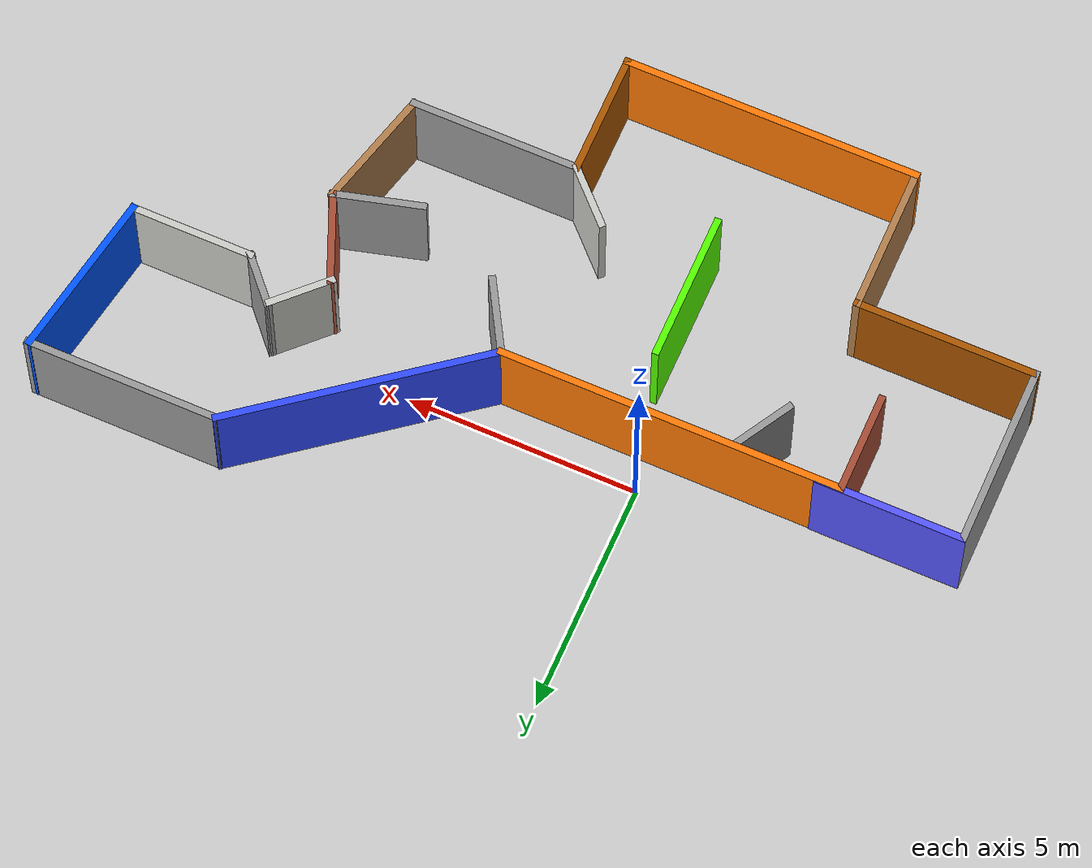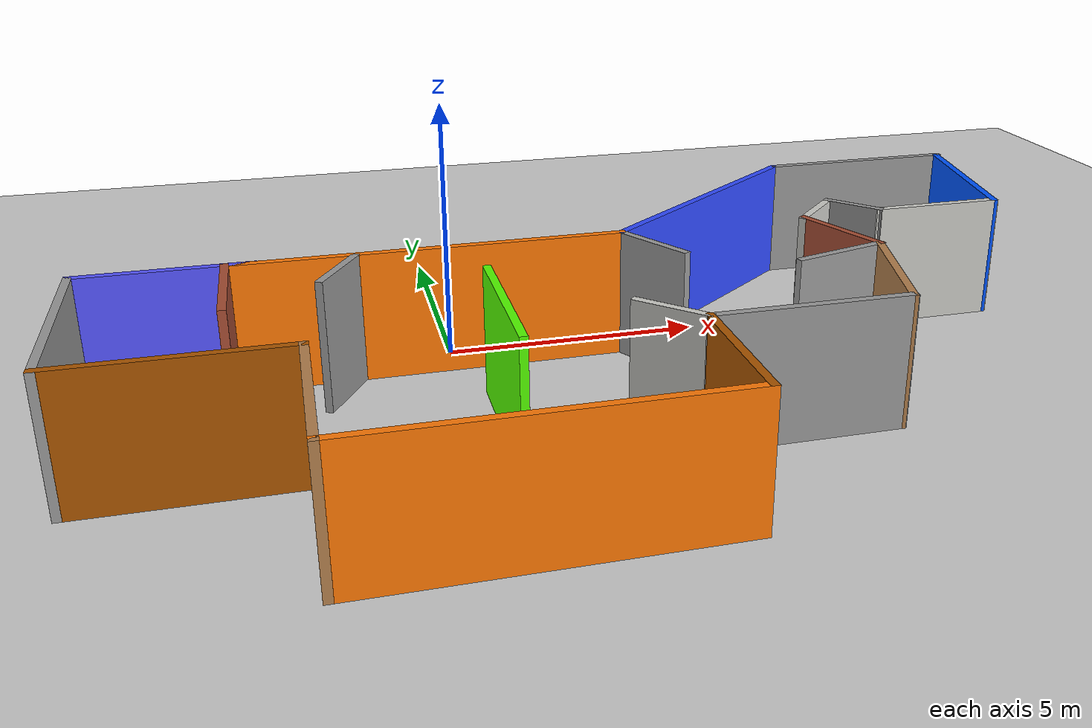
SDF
<sdf version="1.6">
 <world name="default">
  <light name="sun" type="directional">
   <pose>0 0 10 0 -0 0</pose>
   <diffuse>0.8 0.8 0.8 1</diffuse>
   <specular>0.2 0.2 0.2 1</specular>
   <attenuation>
    <range>1000</range>
    <constant>0.9</constant>
    <linear>0.01</linear>
    <quadratic>0.001</quadratic>
   </attenuation>
   <direction>-0.5 0.1 -0.9</direction>
  </light>
  <model name="ground_plane">
   <static>1</static>
   <link name="link">
    <collision name="collision">
     <geometry><plane><normal>0 0 1</normal><size>100 100</size></plane></geometry>
     <surface>
      <contact><collide_bitmask>65535</collide_bitmask></contact>
      <friction><ode><mu>100</mu><mu2>50</mu2></ode></friction>
     </surface>
    </collision>
    <visual name="visual">
     <cast_shadows>0</cast_shadows>
     <geometry><plane><normal>0 0 1</normal><size>100 100</size></plane></geometry>
     <material>
      <script><uri>file://media/materials/scripts/gazebo.material</uri><name>Gazebo/Grey</name></script>
     </material>
    </visual>
   </link>
  </model>
  <gravity>0 0 -9.8</gravity>
  <magnetic_field>6e-06 2.3e-05 -4.2e-05</magnetic_field>
  <atmosphere type="adiabatic"/>
  <physics name="default_physics" default="0" type="ode">
   <max_step_size>0.001</max_step_size>
   <real_time_factor>1</real_time_factor>
   <real_time_update_rate>1000</real_time_update_rate>
  </physics>
  <scene><ambient>0.4 0.4 0.4 1</ambient><background>0.7 0.7 0.7 1</background><shadows>1</shadows></scene>
  <spherical_coordinates>
   <surface_model>EARTH_WGS84</surface_model>
   <latitude_deg>0</latitude_deg>
   <longitude_deg>0</longitude_deg>
   <elevation>0</elevation>
   <heading_deg>0</heading_deg>
  </spherical_coordinates>
  <model name="mynewworld">
   <pose>2.68217 -2.42345 0 0 -0 0</pose>
   <link name="Wall_0">
    <collision name="Wall_0_Collision">
     <geometry><box><size>7.5 0.15 2.5</size></box></geometry>
     <pose>0 0 1.25 0 -0 0</pose>
    </collision>
    <visual name="Wall_0_Visual">
     <pose>0 0 1.25 0 -0 0</pose>
     <geometry><box><size>7.5 0.15 2.5</size></box></geometry>
     <material>
      <script><uri>file://media/materials/scripts/gazebo.material</uri><name>Gazebo/Grey</name></script>
      <ambient>0.996078 0.47451 0.0196078 1</ambient>
     </material>
     <meta><layer>0</layer></meta>
    </visual>
    <pose>-3.06596 1.65944 0 0 -0 0</pose>
   </link>
   <link name="Wall_10">
    <collision name="Wall_10_Collision">
     <geometry><box><size>3.75 0.15 2.5</size></box></geometry>
     <pose>0 0 1.25 0 -0 0</pose>
    </collision>
    <visual name="Wall_10_Visual">
     <pose>0 0 1.25 0 -0 0</pose>
     <geometry><box><size>3.75 0.15 2.5</size></box></geometry>
     <material>
      <script><uri>file://media/materials/scripts/gazebo.material</uri><name>Gazebo/Grey</name></script>
      <ambient>0 0 0 1</ambient>
     </material>
     <meta><layer>0</layer></meta>
    </visual>
    <pose>2.64396 -2.67266 0 0 -0 3.14159</pose>
   </link>
   <link name="Wall_12">
    <collision name="Wall_12_Collision">
     <geometry><box><size>3.25 0.15 2.5</size></box></geometry>
     <pose>0 0 1.25 0 -0 0</pose>
    </collision>
    <visual name="Wall_12_Visual">
     <pose>0 0 1.25 0 -0 0</pose>
     <geometry><box><size>3.25 0.15 2.5</size></box></geometry>
     <material>
      <script><uri>file://media/materials/scripts/gazebo.material</uri><name>Gazebo/Grey</name></script>
      <ambient>0.333333 1 0 1</ambient>
     </material>
     <meta><layer>0</layer></meta>
    </visual>
    <pose>-2.23196 -1.14675 0 0 0 -1.5708</pose>
   </link>
   <link name="Wall_14">
    <collision name="Wall_14_Collision">
     <geometry><box><size>2.75 0.15 2.5</size></box></geometry>
     <pose>0 0 1.25 0 -0 0</pose>
    </collision>
    <visual name="Wall_14_Visual">
     <pose>0 0 1.25 0 -0 0</pose>
     <geometry><box><size>2.75 0.15 2.5</size></box></geometry>
     <material>
      <script><uri>file://media/materials/scripts/gazebo.material</uri><name>Gazebo/Grey</name></script>
      <ambient>0.666667 0.333333 0 1</ambient>
     </material>
     <meta><layer>0</layer></meta>
    </visual>
    <pose>0.843957 -3.97266 0 0 0 -1.5708</pose>
   </link>
   <link name="Wall_15">
    <collision name="Wall_15_Collision">
     <geometry><box><size>6.5 0.15 2.5</size></box></geometry>
     <pose>0 0 1.25 0 -0 0</pose>
    </collision>
    <visual name="Wall_15_Visual">
     <pose>0 0 1.25 0 -0 0</pose>
     <geometry><box><size>6.5 0.15 2.5</size></box></geometry>
     <material>
      <script><uri>file://media/materials/scripts/gazebo.material</uri><name>Gazebo/Grey</name></script>
      <ambient>0.996078 0.47451 0.0196078 1</ambient>
     </material>
     <meta><layer>0</layer></meta>
    </visual>
    <pose>-2.33104 -5.27266 0 0 -0 3.14159</pose>
   </link>
   <link name="Wall_16">
    <collision name="Wall_16_Collision">
     <geometry><box><size>3.25 0.15 2.5</size></box></geometry>
     <pose>0 0 1.25 0 -0 0</pose>
    </collision>
    <visual name="Wall_16_Visual">
     <pose>0 0 1.25 0 -0 0</pose>
     <geometry><box><size>3.25 0.15 2.5</size></box></geometry>
     <material>
      <script><uri>file://media/materials/scripts/gazebo.material</uri><name>Gazebo/Wood</name></script>
      <ambient>1 1 1 1</ambient>
     </material>
     <meta><layer>0</layer></meta>
    </visual>
    <pose>-5.50604 -3.72266 0 0 -0 1.5708</pose>
   </link>
   <link name="Wall_17">
    <collision name="Wall_17_Collision">
     <geometry><box><size>4 0.15 2.5</size></box></geometry>
     <pose>0 0 1.25 0 -0 0</pose>
    </collision>
    <visual name="Wall_17_Visual">
     <pose>0 0 1.25 0 -0 0</pose>
     <geometry><box><size>4 0.15 2.5</size></box></geometry>
     <material>
      <script><uri>file://media/materials/scripts/gazebo.material</uri><name>Gazebo/Grey</name></script>
      <ambient>0.666667 0.333333 0 1</ambient>
     </material>
     <meta><layer>0</layer></meta>
    </visual>
    <pose>-7.43104 -2.17266 0 0 -0 3.14159</pose>
   </link>
   <link name="Wall_18">
    <collision name="Wall_18_Collision">
     <geometry><box><size>4 0.15 2.5</size></box></geometry>
     <pose>0 0 1.25 0 -0 0</pose>
    </collision>
    <visual name="Wall_18_Visual">
     <pose>0 0 1.25 0 -0 0</pose>
     <geometry><box><size>4 0.15 2.5</size></box></geometry>
     <material>
      <script><uri>file://media/materials/scripts/gazebo.material</uri><name>Gazebo/Grey</name></script>
      <ambient>1 1 1 1</ambient>
     </material>
     <meta><layer>0</layer></meta>
    </visual>
    <pose>-9.35604 -0.247664 0 0 -0 1.5708</pose>
   </link>
   <link name="Wall_19">
    <collision name="Wall_19_Collision">
     <geometry><box><size>3.25 0.15 2.5</size></box></geometry>
     <pose>0 0 1.25 0 -0 0</pose>
    </collision>
    <visual name="Wall_19_Visual">
     <pose>0 0 1.25 0 -0 0</pose>
     <geometry><box><size>3.25 0.15 2.5</size></box></geometry>
     <material>
      <script><uri>file://media/materials/scripts/gazebo.material</uri><name>Gazebo/Grey</name></script>
      <ambient>0.333333 0.333333 1 1</ambient>
     </material>
     <meta><layer>0</layer></meta>
    </visual>
    <pose>-7.80604 1.67734 0 0 -0 0</pose>
   </link>
   <link name="Wall_2">
    <collision name="Wall_2_Collision">
     <geometry><box><size>5.99687 0.15 2.5</size></box></geometry>
     <pose>0 0 1.25 0 -0 0</pose>
    </collision>
    <visual name="Wall_2_Visual">
     <pose>0 0 1.25 0 -0 0</pose>
     <geometry><box><size>5.99687 0.15 2.5</size></box></geometry>
     <material>
      <script><uri>file://media/materials/scripts/gazebo.material</uri><name>Gazebo/Grey</name></script>
      <ambient>0.188235 0.294118 1 1</ambient>
     </material>
     <meta><layer>0</layer></meta>
    </visual>
    <pose>2.91924 3.45094 0 0 -0 0.659605</pose>
   </link>
   <link name="Wall_23">
    <collision name="Wall_23_Collision">
     <geometry><box><size>2.25 0.15 2.5</size></box></geometry>
     <pose>0 0 1.25 0 -0 0</pose>
    </collision>
    <visual name="Wall_23_Visual">
     <pose>0 0 1.25 0 -0 0</pose>
     <geometry><box><size>2.25 0.15 2.5</size></box></geometry>
     <material>
      <script><uri>file://media/materials/scripts/gazebo.material</uri><name>Gazebo/Bricks</name></script>
      <ambient>1 1 1 1</ambient>
     </material>
     <meta><layer>0</layer></meta>
    </visual>
    <pose>-6.74096 0.609444 0 0 0 -1.5708</pose>
   </link>
   <link name="Wall_25">
    <collision name="Wall_25_Collision">
     <geometry><box><size>1.5 0.15 2.5</size></box></geometry>
     <pose>0 0 1.25 0 -0 0</pose>
    </collision>
    <visual name="Wall_25_Visual">
     <pose>0 0 1.25 0 -0 0</pose>
     <geometry><box><size>1.5 0.15 2.5</size></box></geometry>
     <material>
      <script><uri>file://media/materials/scripts/gazebo.material</uri><name>Gazebo/Grey</name></script>
      <ambient>1 1 1 1</ambient>
     </material>
     <meta><layer>0</layer></meta>
    </visual>
    <pose>-4.78941 1.03207 0 0 0 -2.0944</pose>
   </link>
   <link name="Wall_27">
    <collision name="Wall_27_Collision">
     <geometry><box><size>1.75 0.15 2.5</size></box></geometry>
     <pose>0 0 1.25 0 -0 0</pose>
    </collision>
    <visual name="Wall_27_Visual">
     <pose>0 0 1.25 0 -0 0</pose>
     <geometry><box><size>1.75 0.15 2.5</size></box></geometry>
     <material>
      <script><uri>file://media/materials/scripts/gazebo.material</uri><name>Gazebo/Grey</name></script>
      <ambient>1 1 1 1</ambient>
     </material>
     <meta><layer>0</layer></meta>
    </visual>
    <pose>1.00904 0.966624 0 0 0 -1.0472</pose>
   </link>
   <link name="Wall_29">
    <collision name="Wall_29_Collision">
     <geometry><box><size>1.5 0.15 2.5</size></box></geometry>
     <pose>0 0 1.25 0 -0 0</pose>
    </collision>
    <visual name="Wall_29_Visual">
     <pose>0 0 1.25 0 -0 0</pose>
     <geometry><box><size>1.5 0.15 2.5</size></box></geometry>
     <material>
      <script><uri>file://media/materials/scripts/gazebo.material</uri><name>Gazebo/CeilingTiled</name></script>
      <ambient>1 1 1 1</ambient>
     </material>
     <meta><layer>0</layer></meta>
    </visual>
    <pose>0.36666 -2.19537 0 0 -0 2.35619</pose>
   </link>
   <link name="Wall_3">
    <collision name="Wall_3_Collision">
     <geometry><box><size>4.25 0.15 2.5</size></box></geometry>
     <pose>0 0 1.25 0 -0 0</pose>
    </collision>
    <visual name="Wall_3_Visual">
     <pose>0 0 1.25 0 -0 0</pose>
     <geometry><box><size>4.25 0.15 2.5</size></box></geometry>
     <material>
      <script><uri>file://media/materials/scripts/gazebo.material</uri><name>Gazebo/Grey</name></script>
      <ambient>0 0 0 1</ambient>
     </material>
     <meta><layer>0</layer></meta>
    </visual>
    <pose>7.30604 5.24244 0 0 -0 0</pose>
   </link>
   <link name="Wall_31">
    <collision name="Wall_31_Collision">
     <geometry><box><size>2 0.15 2.5</size></box></geometry>
     <pose>0 0 1.25 0 -0 0</pose>
    </collision>
    <visual name="Wall_31_Visual">
     <pose>0 0 1.25 0 -0 0</pose>
     <geometry><box><size>2 0.15 2.5</size></box></geometry>
     <material>
      <script><uri>file://media/materials/scripts/gazebo.material</uri><name>Gazebo/Grey</name></script>
      <ambient>1 1 1 1</ambient>
     </material>
     <meta><layer>0</layer></meta>
    </visual>
    <pose>4.2234 -0.400664 0 0 0 -2.87979</pose>
   </link>
   <link name="Wall_4">
    <collision name="Wall_4_Collision">
     <geometry><box><size>3.7153 0.15 2.5</size></box></geometry>
     <pose>0 0 1.25 0 -0 0</pose>
    </collision>
    <visual name="Wall_4_Visual">
     <pose>0 0 1.25 0 -0 0</pose>
     <geometry><box><size>3.7153 0.15 2.5</size></box></geometry>
     <material>
      <script><uri>file://media/materials/scripts/gazebo.material</uri><name>Gazebo/Grey</name></script>
      <ambient>0 0.333333 1 1</ambient>
     </material>
     <meta><layer>0</layer></meta>
    </visual>
    <pose>9.00454 3.48965 0 0 0 -1.75408</pose>
   </link>
   <link name="Wall_5">
    <collision name="Wall_5_Collision">
     <geometry><box><size>2.75 0.15 2.5</size></box></geometry>
     <pose>0 0 1.25 0 -0 0</pose>
    </collision>
    <visual name="Wall_5_Visual">
     <pose>0 0 1.25 0 -0 0</pose>
     <geometry><box><size>2.75 0.15 2.5</size></box></geometry>
     <material>
      <script><uri>file://media/materials/scripts/gazebo.material</uri><name>Gazebo/CeilingTiled</name></script>
      <ambient>1 1 1 1</ambient>
     </material>
     <meta><layer>0</layer></meta>
    </visual>
    <pose>7.37963 1.73686 0 0 -0 3.14159</pose>
   </link>
   <link name="Wall_6">
    <collision name="Wall_6_Collision">
     <geometry><box><size>1.26787 0.15 2.5</size></box></geometry>
     <pose>0 0 1.25 0 -0 0</pose>
    </collision>
    <visual name="Wall_6_Visual">
     <pose>0 0 1.25 0 -0 0</pose>
     <geometry><box><size>1.26787 0.15 2.5</size></box></geometry>
     <material>
      <script><uri>file://media/materials/scripts/gazebo.material</uri><name>Gazebo/Grey</name></script>
      <ambient>1 1 1 1</ambient>
     </material>
     <meta><layer>0</layer></meta>
    </visual>
    <pose>5.70486 2.15153 0 0 -0 2.3057</pose>
   </link>
   <link name="Wall_7">
    <collision name="Wall_7_Collision">
     <geometry><box><size>1.5 0.15 2.5</size></box></geometry>
     <pose>0 0 1.25 0 -0 0</pose>
    </collision>
    <visual name="Wall_7_Visual">
     <pose>0 0 1.25 0 -0 0</pose>
     <geometry><box><size>1.5 0.15 2.5</size></box></geometry>
     <material>
      <script><uri>file://media/materials/scripts/gazebo.material</uri><name>Gazebo/CeilingTiled</name></script>
      <ambient>1 1 1 1</ambient>
     </material>
     <meta><layer>0</layer></meta>
    </visual>
    <pose>4.82619 2.0623 0 0 0 -2.35619</pose>
   </link>
   <link name="Wall_8">
    <collision name="Wall_8_Collision">
     <geometry><box><size>2.07164 0.15 2.5</size></box></geometry>
     <pose>0 0 1.25 0 -0 0</pose>
    </collision>
    <visual name="Wall_8_Visual">
     <pose>0 0 1.25 0 -0 0</pose>
     <geometry><box><size>2.07164 0.15 2.5</size></box></geometry>
     <material>
      <script><uri>file://media/materials/scripts/gazebo.material</uri><name>Gazebo/Bricks</name></script>
      <ambient>1 1 1 1</ambient>
     </material>
     <meta><layer>0</layer></meta>
    </visual>
    <pose>4.74619 0.725175 0 0 0 -1.17471</pose>
   </link>
   <link name="Wall_9">
    <collision name="Wall_9_Collision">
     <geometry><box><size>2.75 0.15 2.5</size></box></geometry>
     <pose>0 0 1.25 0 -0 0</pose>
    </collision>
    <visual name="Wall_9_Visual">
     <pose>0 0 1.25 0 -0 0</pose>
     <geometry><box><size>2.75 0.15 2.5</size></box></geometry>
     <material>
      <script><uri>file://media/materials/scripts/gazebo.material</uri><name>Gazebo/Wood</name></script>
      <ambient>1 1 1 1</ambient>
     </material>
     <meta><layer>0</layer></meta>
    </visual>
    <pose>4.78042 -1.41696 0 0 0 -1.8326</pose>
   </link>
   <static>1</static>
  </model>
 </world>
</sdf>
